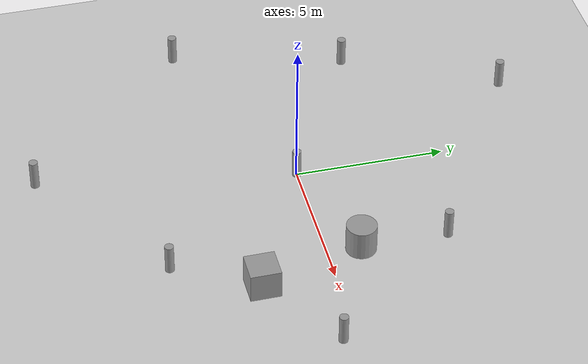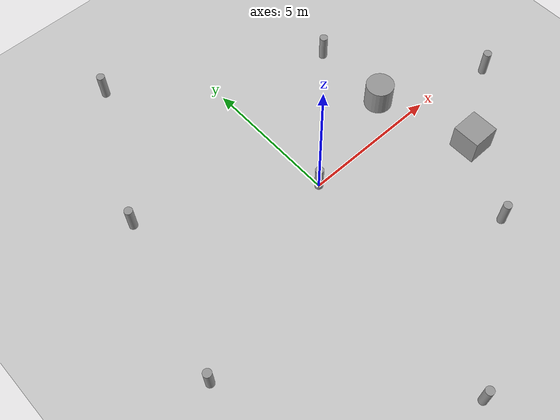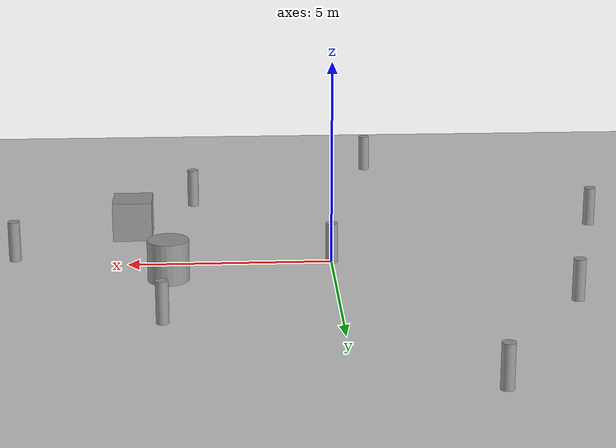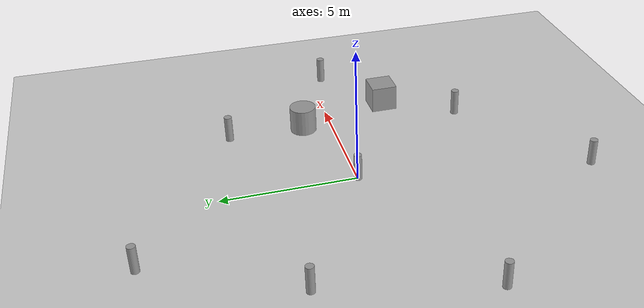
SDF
<sdf version="1.7">
 <world name="default">
  <light name="sun" type="directional">
   <pose>0 0 10 0 -0 0</pose>
   <diffuse>0.8 0.8 0.8 1</diffuse>
   <specular>0.2 0.2 0.2 1</specular>
   <attenuation>
    <range>1000</range>
    <constant>0.9</constant>
    <linear>0.01</linear>
    <quadratic>0.001</quadratic>
   </attenuation>
   <direction>-0.5 0.1 -0.9</direction>
   <spot><inner_angle>0</inner_angle><outer_angle>0</outer_angle><falloff>0</falloff></spot>
  </light>
  <model name="ground_plane">
   <static>1</static>
   <link name="link">
    <collision name="collision">
     <geometry><plane><normal>0 0 1</normal><size>100 100</size></plane></geometry>
     <surface>
      <contact><collide_bitmask>65535</collide_bitmask></contact>
      <friction><ode><mu>100</mu><mu2>50</mu2></ode></friction>
     </surface>
    </collision>
    <visual name="visual">
     <cast_shadows>0</cast_shadows>
     <geometry><plane><normal>0 0 1</normal><size>100 100</size></plane></geometry>
     <material>
      <script><uri>file://media/materials/scripts/gazebo.material</uri><name>Gazebo/Grey</name></script>
     </material>
    </visual>
   </link>
  </model>
  <gravity>0 0 -9.8</gravity>
  <magnetic_field>6e-06 2.3e-05 -4.2e-05</magnetic_field>
  <atmosphere type="adiabatic"/>
  <physics type="ode">
   <max_step_size>0.001</max_step_size>
   <real_time_factor>1</real_time_factor>
   <real_time_update_rate>1000</real_time_update_rate>
  </physics>
  <scene><ambient>0.4 0.4 0.4 1</ambient><background>0.7 0.7 0.7 1</background><shadows>1</shadows></scene>
  <spherical_coordinates>
   <surface_model>EARTH_WGS84</surface_model>
   <latitude_deg>0</latitude_deg>
   <longitude_deg>0</longitude_deg>
   <elevation>0</elevation>
   <heading_deg>0</heading_deg>
  </spherical_coordinates>
  <model name="unit_cylinder_0_clone">
   <pose>-7 -2.75 0.499992 -0 -0 -1.4e-05</pose>
   <link name="link">
    <inertial>
     <mass>1</mass>
     <inertia><ixx>0.145833</ixx><ixy>0</ixy><ixz>0</ixz><iyy>0.145833</iyy><iyz>0</iyz><izz>0.125</izz></inertia>
    </inertial>
    <collision name="collision">
     <geometry><cylinder><radius>0.146742</radius><length>1</length></cylinder></geometry>
    </collision>
    <visual name="visual">
     <geometry><cylinder><radius>0.146742</radius><length>1</length></cylinder></geometry>
     <material>
      <script><name>Gazebo/Grey</name><uri>file://media/materials/scripts/gazebo.material</uri></script>
     </material>
    </visual>
   </link>
  </model>
  <model name="unit_cylinder_0_clone_clone">
   <pose>-1.5 -8.5 0.499991 0 -0 -1.3e-05</pose>
   <link name="link">
    <inertial>
     <mass>1</mass>
     <inertia><ixx>0.145833</ixx><ixy>0</ixy><ixz>0</ixz><iyy>0.145833</iyy><iyz>0</iyz><izz>0.125</izz></inertia>
    </inertial>
    <collision name="collision">
     <geometry><cylinder><radius>0.146742</radius><length>1</length></cylinder></geometry>
    </collision>
    <visual name="visual">
     <geometry><cylinder><radius>0.146742</radius><length>1</length></cylinder></geometry>
     <material>
      <script><name>Gazebo/Grey</name><uri>file://media/materials/scripts/gazebo.material</uri></script>
     </material>
    </visual>
   </link>
  </model>
  <model name="unit_cylinder_0_clone_clone_0">
   <pose>-3 8 0.499993 -0 -0 -1.1e-05</pose>
   <link name="link">
    <inertial>
     <mass>1</mass>
     <inertia><ixx>0.145833</ixx><ixy>0</ixy><ixz>0</ixz><iyy>0.145833</iyy><iyz>0</iyz><izz>0.125</izz></inertia>
    </inertial>
    <collision name="collision">
     <geometry><cylinder><radius>0.146742</radius><length>1</length></cylinder></geometry>
    </collision>
    <visual name="visual">
     <geometry><cylinder><radius>0.146742</radius><length>1</length></cylinder></geometry>
     <material>
      <script><name>Gazebo/Grey</name><uri>file://media/materials/scripts/gazebo.material</uri></script>
     </material>
    </visual>
   </link>
  </model>
  <model name="unit_cylinder_0_clone_clone_1">
   <pose>-0 0 0.499992 -0 -0 -9e-06</pose>
   <link name="link">
    <inertial>
     <mass>1</mass>
     <inertia><ixx>0.145833</ixx><ixy>0</ixy><ixz>0</ixz><iyy>0.145833</iyy><iyz>0</iyz><izz>0.125</izz></inertia>
    </inertial>
    <collision name="collision">
     <geometry><cylinder><radius>0.146742</radius><length>1</length></cylinder></geometry>
    </collision>
    <visual name="visual">
     <geometry><cylinder><radius>0.146742</radius><length>1</length></cylinder></geometry>
     <material>
      <script><name>Gazebo/Grey</name><uri>file://media/materials/scripts/gazebo.material</uri></script>
     </material>
    </visual>
   </link>
  </model>
  <model name="unit_cylinder_0_clone_clone_2">
   <pose>4 4 0.499993 -0 -0 -1.5e-05</pose>
   <link name="link">
    <inertial>
     <mass>1</mass>
     <inertia><ixx>0.145833</ixx><ixy>0</ixy><ixz>0</ixz><iyy>0.145833</iyy><iyz>0</iyz><izz>0.125</izz></inertia>
    </inertial>
    <collision name="collision">
     <geometry><cylinder><radius>0.146742</radius><length>1</length></cylinder></geometry>
    </collision>
    <visual name="visual">
     <geometry><cylinder><radius>0.146742</radius><length>1</length></cylinder></geometry>
     <material>
      <script><name>Gazebo/Grey</name><uri>file://media/materials/scripts/gazebo.material</uri></script>
     </material>
    </visual>
   </link>
  </model>
  <model name="unit_cylinder_0_clone_clone_3">
   <pose>3.5 -5 0.499991 0 -0 -1.3e-05</pose>
   <link name="link">
    <inertial>
     <mass>1</mass>
     <inertia><ixx>0.145833</ixx><ixy>0</ixy><ixz>0</ixz><iyy>0.145833</iyy><iyz>0</iyz><izz>0.125</izz></inertia>
    </inertial>
    <collision name="collision">
     <geometry><cylinder><radius>0.146742</radius><length>1</length></cylinder></geometry>
    </collision>
    <visual name="visual">
     <geometry><cylinder><radius>0.146742</radius><length>1</length></cylinder></geometry>
     <material>
      <script><name>Gazebo/Grey</name><uri>file://media/materials/scripts/gazebo.material</uri></script>
     </material>
    </visual>
   </link>
  </model>
  <model name="unit_cylinder_0_clone_clone_4">
   <pose>-5.5 3 0.499994 0 -0 -1.3e-05</pose>
   <link name="link">
    <inertial>
     <mass>1</mass>
     <inertia><ixx>0.145833</ixx><ixy>0</ixy><ixz>0</ixz><iyy>0.145833</iyy><iyz>0</iyz><izz>0.125</izz></inertia>
    </inertial>
    <collision name="collision">
     <geometry><cylinder><radius>0.146742</radius><length>1</length></cylinder></geometry>
    </collision>
    <visual name="visual">
     <geometry><cylinder><radius>0.146742</radius><length>1</length></cylinder></geometry>
     <material>
      <script><name>Gazebo/Grey</name><uri>file://media/materials/scripts/gazebo.material</uri></script>
     </material>
    </visual>
   </link>
  </model>
  <model name="unit_cylinder_0_clone_clone_5">
   <pose>7.8 -0.5 0.499997 0 0 -1.3e-05</pose>
   <link name="link">
    <inertial>
     <mass>1</mass>
     <inertia><ixx>0.145833</ixx><ixy>0</ixy><ixz>0</ixz><iyy>0.145833</iyy><iyz>0</iyz><izz>0.125</izz></inertia>
    </inertial>
    <collision name="collision">
     <geometry><cylinder><radius>0.146742</radius><length>1</length></cylinder></geometry>
    </collision>
    <visual name="visual">
     <geometry><cylinder><radius>0.146742</radius><length>1</length></cylinder></geometry>
     <material>
      <script><name>Gazebo/Grey</name><uri>file://media/materials/scripts/gazebo.material</uri></script>
     </material>
    </visual>
   </link>
  </model>
  <model name="unit_cylinder">
   <pose>3.96667 1.1152 0.499998 -3e-06 -3e-06 -0.011866</pose>
   <link name="link">
    <inertial>
     <mass>1</mass>
     <inertia><ixx>0.145833</ixx><ixy>0</ixy><ixz>0</ixz><iyy>0.145833</iyy><iyz>0</iyz><izz>0.125</izz></inertia>
    </inertial>
    <collision name="collision">
     <geometry><cylinder><radius>0.5</radius><length>1</length></cylinder></geometry>
    </collision>
    <visual name="visual">
     <geometry><cylinder><radius>0.5</radius><length>1</length></cylinder></geometry>
     <material>
      <script><name>Gazebo/Grey</name><uri>file://media/materials/scripts/gazebo.material</uri></script>
     </material>
    </visual>
   </link>
  </model>
  <model name="unit_box">
   <pose>4.99129 -2.35838 0.499995 -1e-05 0 0.005403</pose>
   <link name="link">
    <inertial>
     <mass>1</mass>
     <inertia>
      <ixx>0.166667</ixx>
      <ixy>0</ixy>
      <ixz>0</ixz>
      <iyy>0.166667</iyy>
      <iyz>0</iyz>
      <izz>0.166667</izz>
     </inertia>
    </inertial>
    <collision name="collision"><geometry><box><size>1 1 1</size></box></geometry></collision>
    <visual name="visual">
     <geometry><box><size>1 1 1</size></box></geometry>
     <material>
      <script><name>Gazebo/Grey</name><uri>file://media/materials/scripts/gazebo.material</uri></script>
     </material>
    </visual>
   </link>
  </model>
 </world>
</sdf>
